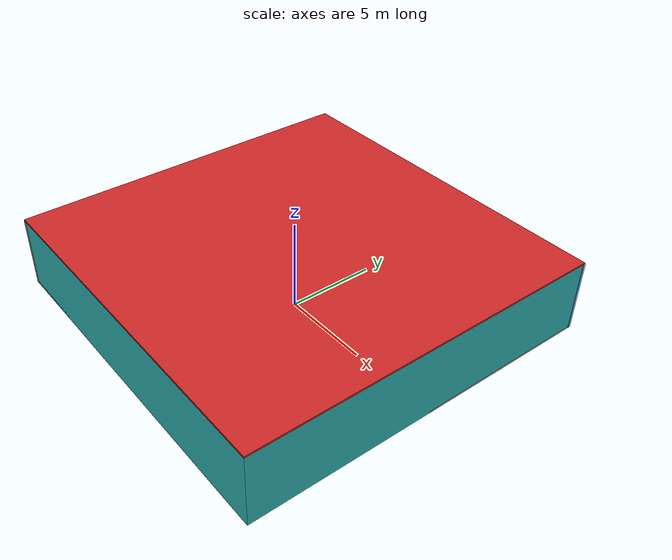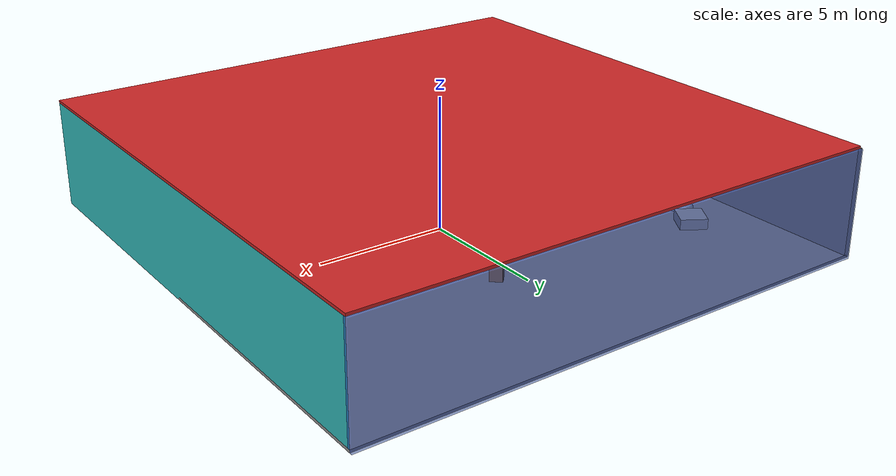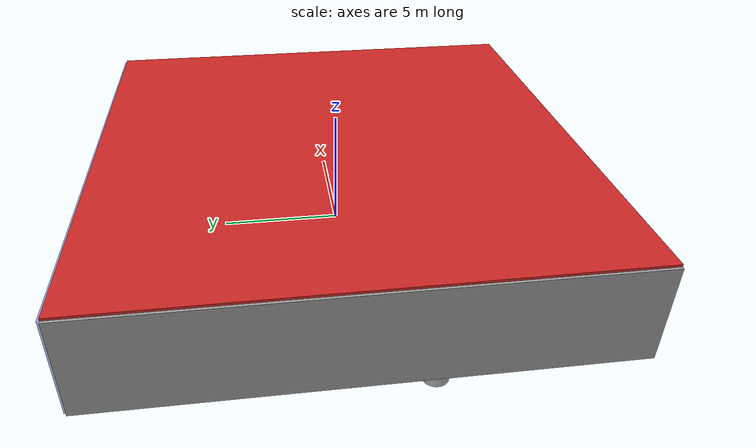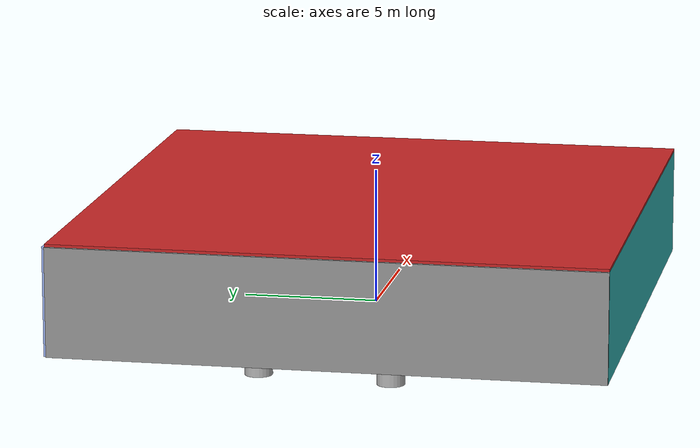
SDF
<sdf version="1.4">
 <world name="default">
  <physics type="ode">
   <max_step_size>0.001</max_step_size>
   <real_time_factor>1</real_time_factor>
   <real_time_update_rate>1000</real_time_update_rate>
   <gravity>0 0 -9.8</gravity>
  </physics>
  <scene><ambient>0.4 0.4 0.4 1</ambient><background>0.7 0.7 0.7 1</background><shadows>1</shadows></scene>
  <model name="Surrounding">
   <static>1</static>
   <link name="Ceiling">
    <collision name="Ceiling_Collision"><geometry><box><size>20 20 0.1</size></box></geometry></collision>
    <visual name="Ceiling_Visual">
     <geometry><box><size>20 20 0.1</size></box></geometry>
     <material>
      <script><uri>file://media/materials/scripts/gazebo.material</uri><name>Gazebo/RedGlow</name></script>
     </material>
    </visual>
    <pose>0 0 4.05 0 0 0</pose>
   </link>
   <link name="Wall_South">
    <collision name="Wall_South_Collision">
     <geometry><box><size>20 0 4</size></box></geometry>
     <pose>0 0 2 0 -0 0</pose>
    </collision>
    <visual name="Wall_South_Visual">
     <pose>0 0 2 0 -0 0</pose>
     <geometry><box><size>20 0 4</size></box></geometry>
     <material>
      <script>
       <uri>file://media/materials/scripts/gazebo.material</uri>
       <name>Gazebo/TurquoiseGlowOutline</name>
      </script>
     </material>
    </visual>
    <velocity_decay><linear>0</linear><angular>0</angular></velocity_decay>
    <pose>0 -10 0 0 -0 0</pose>
   </link>
   <link name="Wall_East">
    <collision name="Wall_21_Collision">
     <geometry><box><size>20 0 4</size></box></geometry>
     <pose>0 0 2 0 -0 0</pose>
    </collision>
    <visual name="Wall_21_Visual">
     <pose>0 0 2 0 -0 0</pose>
     <geometry><box><size>20 0 4</size></box></geometry>
     <material>
      <script>
       <uri>file://media/materials/scripts/gazebo.material</uri>
       <name>Gazebo/TurquoiseGlowOutline</name>
      </script>
     </material>
    </visual>
    <velocity_decay><linear>0</linear><angular>0</angular></velocity_decay>
    <pose>10 0 0 0 -0 1.5708</pose>
   </link>
   <link name="Wall_North">
    <collision name="Wall_22_Collision">
     <geometry><box><size>20 0.2 4</size></box></geometry>
     <pose>0 0 2 0 -0 0</pose>
    </collision>
    <visual name="Wall_22_Visual">
     <pose>0 0 2 0 -0 0</pose>
     <geometry><box><size>20 0.2 4</size></box></geometry>
     <material>
      <script><uri>file://media/materials/scripts/gazebo.material</uri><name>Gazebo/BlueTransparent</name></script>
     </material>
    </visual>
    <velocity_decay><linear>0</linear><angular>0</angular></velocity_decay>
    <pose>0 10 0 0 -0 0</pose>
   </link>
   <link name="Wall_West">
    <collision name="Wall_23_Collision">
     <geometry><box><size>20 0.2 4</size></box></geometry>
     <pose>0 0 2 0 -0 0</pose>
    </collision>
    <visual name="Wall_23_Visual">
     <pose>0 0 2 0 -0 0</pose>
     <geometry><box><size>20 0.2 4</size></box></geometry>
     <material>
      <script><uri>file://media/materials/scripts/gazebo.material</uri><name>Gazebo/Grey</name></script>
     </material>
    </visual>
    <velocity_decay><linear>0</linear><angular>0</angular></velocity_decay>
    <pose>-10 0 0 0 0 -1.5708</pose>
   </link>
   <link name="Ground_link">
    <collision name="collision">
     <pose>0 0 .05 0 -0 0</pose>
     <geometry><box><size>20 20 0.1</size></box></geometry>
    </collision>
    <visual name="visual">
     <pose>0 0 .05 0 -0 0</pose>
     <geometry><box><size>20 20 0.1</size></box></geometry>
     <material>
      <script><uri>file://media/materials/scripts/gazebo.material</uri><name>Gazebo/Grey</name></script>
     </material>
    </visual>
   </link>
   <static>1</static>
  </model>
  <spherical_coordinates>
   <surface_model>EARTH_WGS84</surface_model>
   <latitude_deg>0</latitude_deg>
   <longitude_deg>0</longitude_deg>
   <elevation>0</elevation>
   <heading_deg>0</heading_deg>
  </spherical_coordinates>
  <light name="lightball_0" type="diffuse">
   <diffuse>0.8 0.8 0.8 1</diffuse>
   <specular>0.2 0.2 0.2 1</specular>
   <attenuation>
    <range>100</range>
    <constant>0.7</constant>
    <linear>0.01</linear>
    <quadratic>0.001</quadratic>
   </attenuation>
   <direction>-0.5 0.1 -0.9</direction>
   <pose>3.95035077189 -5.27639107226 2.90731400715 0 0 0</pose>
  </light>
  <light name="lightball_1" type="diffuse">
   <diffuse>0.8 0.8 0.8 1</diffuse>
   <specular>0.2 0.2 0.2 1</specular>
   <attenuation>
    <range>100</range>
    <constant>0.7</constant>
    <linear>0.01</linear>
    <quadratic>0.001</quadratic>
   </attenuation>
   <direction>-0.5 0.1 -0.9</direction>
   <pose>-4.17408303884 8.32253132632 2.30363741865 0 0 0</pose>
  </light>
  <light name="lightball_2" type="diffuse">
   <diffuse>0.8 0.8 0.8 1</diffuse>
   <specular>0.2 0.2 0.2 1</specular>
   <attenuation>
    <range>100</range>
    <constant>0.7</constant>
    <linear>0.01</linear>
    <quadratic>0.001</quadratic>
   </attenuation>
   <direction>-0.5 0.1 -0.9</direction>
   <pose>3.95107689907 6.40162953017 1.22402886421 0 0 0</pose>
  </light>
  <light name="lightball_3" type="diffuse">
   <diffuse>0.8 0.8 0.8 1</diffuse>
   <specular>0.2 0.2 0.2 1</specular>
   <attenuation>
    <range>100</range>
    <constant>0.7</constant>
    <linear>0.01</linear>
    <quadratic>0.001</quadratic>
   </attenuation>
   <direction>-0.5 0.1 -0.9</direction>
   <pose>-1.07092102128 -3.05405911959 1.96860500645 0 0 0</pose>
  </light>
  <light name="lightball_4" type="diffuse">
   <diffuse>0.8 0.8 0.8 1</diffuse>
   <specular>0.2 0.2 0.2 1</specular>
   <attenuation>
    <range>100</range>
    <constant>0.7</constant>
    <linear>0.01</linear>
    <quadratic>0.001</quadratic>
   </attenuation>
   <direction>-0.5 0.1 -0.9</direction>
   <pose>-2.78271000216 -0.111486793783 3.78067347464 0 0 0</pose>
  </light>
  <light name="lightball_5" type="diffuse">
   <diffuse>0.8 0.8 0.8 1</diffuse>
   <specular>0.2 0.2 0.2 1</specular>
   <attenuation>
    <range>100</range>
    <constant>0.7</constant>
    <linear>0.01</linear>
    <quadratic>0.001</quadratic>
   </attenuation>
   <direction>-0.5 0.1 -0.9</direction>
   <pose>-4.25077676596 7.09701796768 1.415227295 0 0 0</pose>
  </light>
  <light name="lightball_6" type="diffuse">
   <diffuse>0.8 0.8 0.8 1</diffuse>
   <specular>0.2 0.2 0.2 1</specular>
   <attenuation>
    <range>100</range>
    <constant>0.7</constant>
    <linear>0.01</linear>
    <quadratic>0.001</quadratic>
   </attenuation>
   <direction>-0.5 0.1 -0.9</direction>
   <pose>7.38963425453 -1.59149434828 1.26354992984 0 0 0</pose>
  </light>
  <include>
   <uri>model://textured_shapes</uri>
   <pose>-8.00600754746 -2.11575445162 0 0 0 1.69015232777</pose>
  </include>
  <include>
   <uri>model://textured_shapes</uri>
   <pose>-8.27715391633 3.80065070712 0 0 0 2.59078240828</pose>
  </include>
  <include>
   <uri>model://robocup_3Dsim_goal</uri>
   <pose>-2.21539906912 1.22652458048 0 0 0 0.409270015293</pose>
  </include>
  <include><uri>model://table</uri><pose>2.13282122774 -2.16620266073 0 0 0 0.699560022013</pose></include>
  <include><uri>model://cabinet</uri><pose>0.902741884 4.45626798385 0 0 0 2.40056073087</pose></include>
 </world>
</sdf>

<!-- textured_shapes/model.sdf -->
<sdf version="1.6">
  <model name="textured_shapes">
    <pose>0 0 0.5 0 0 0</pose>
    <link name="box">
      <pose>0 -1.5 0 0 0 0</pose>
      <collision name="collision">
        <geometry>
          <box>
            <size>1 1 1</size>
          </box>
        </geometry>
      </collision>
      <visual name="visual">
        <geometry>
          <box>
            <size>1 1 1</size>
          </box>
        </geometry>
        <material>
          <script>
            <uri>model://../model_source/models/textured_shapes/materials/scripts</uri>
            <uri>model://../model_source/models/textured_shapes/materials/textures</uri>
            <name>TexturedShape/Squares</name>
          </script>
        </material>
      </visual>
    </link>
    <link name="sphere">
      <collision name="collision">
        <geometry>
          <sphere>
            <radius>0.5</radius>
          </sphere>
        </geometry>
      </collision>
      <visual name="visual">
        <geometry>
          <sphere>
            <radius>0.5</radius>
          </sphere>
        </geometry>
        <material>
          <script>
            <uri>model://../model_source/models/textured_shapes/materials/scripts</uri>
            <uri>model://../model_source/models/textured_shapes/materials/textures</uri>
            <name>TexturedShape/Squares</name>
          </script>
        </material>
      </visual>
    </link>
    <link name="cylinder">
      <pose>0 1.5 0 0 0 0</pose>
      <collision name="collision">
        <geometry>
          <cylinder>
            <radius>0.5</radius>
            <length>1</length>
          </cylinder>
        </geometry>
      </collision>
      <visual name="visual">
        <geometry>
          <cylinder>
            <radius>0.5</radius>
            <length>1</length>
          </cylinder>
        </geometry>
        <material>
          <script>
            <uri>model://../model_source/models/textured_shapes/materials/scripts</uri>
            <uri>model://../model_source/models/textured_shapes/materials/textures</uri>
            <name>TexturedShape/Squares</name>
          </script>
        </material>
      </visual>
    </link>
  </model>
</sdf>

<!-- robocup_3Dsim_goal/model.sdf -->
<sdf version="1.5">
  <model name="robocup_3d_goal">
    <static>true</static>
    <link name="left_post">
      <pose>0 1.05 0.45 0 0 0</pose>
      <collision name="collision">
        <geometry>
          <cylinder>
            <radius>0.05</radius>
            <length>0.9</length>
          </cylinder>
        </geometry>
      </collision>
      <visual name="visual">
        <geometry>
          <cylinder>
            <radius>0.05</radius>
            <length>0.9</length>
          </cylinder>
        </geometry>
        <material>
          <script>
            <uri>file://media/materials/scripts/gazebo.material</uri>
            <name>Gazebo/ZincYellow</name>
          </script>
        </material>
      </visual>
    </link>
    <link name="left_support_horiz_lower">
      <pose>0.30 1.05 0.01 0 0 0</pose>
      <collision name="collision">
        <geometry>
          <box>
            <size>0.50 0.02 0.02</size>
          </box>
        </geometry>
      </collision>
      <visual name="visual">
        <geometry>
          <box>
            <size>0.50 0.02 0.02</size>
          </box>
        </geometry>
        <material>
          <script>
            <uri>file://media/materials/scripts/gazebo.material</uri>
            <name>Gazebo/White</name>
          </script>
        </material>
      </visual>
    </link>
    <link name="left_support_horiz_upper">
      <pose>0.30 1.05 0.79 0 0 0</pose>
      <collision name="collision">
        <geometry>
          <box>
            <size>0.50 0.02 0.02</size>
          </box>
        </geometry>
      </collision>
      <visual name="visual">
        <geometry>
          <box>
            <size>0.50 0.02 0.02</size>
          </box>
        </geometry>
        <material>
          <script>
            <uri>file://media/materials/scripts/gazebo.material</uri>
            <name>Gazebo/White</name>
          </script>
        </material>
      </visual>
    </link>
    <link name="left_support_vertical">
      <pose>0.56 1.05 0.4 0 1.5708 0</pose>
      <collision name="collision">
        <geometry>
          <box>
            <size>0.80 0.02 0.02</size>
          </box>
        </geometry>
      </collision>
      <visual name="visual">
        <geometry>
          <box>
            <size>0.80 0.02 0.02</size>
          </box>
        </geometry>
        <material>
          <script>
            <uri>file://media/materials/scripts/gazebo.material</uri>
            <name>Gazebo/White</name>
          </script>
        </material>
      </visual>
    </link>
    <link name="right_support_horiz_lower">
      <pose>0.30 -1.05 0.01 0 0 0</pose>
      <collision name="collision">
        <geometry>
          <box>
            <size>0.50 0.02 0.02</size>
          </box>
        </geometry>
      </collision>
      <visual name="visual">
        <geometry>
          <box>
            <size>0.50 0.02 0.02</size>
          </box>
        </geometry>
        <material>
          <script>
            <uri>file://media/materials/scripts/gazebo.material</uri>
            <name>Gazebo/White</name>
          </script>
        </material>
      </visual>
    </link>
    <link name="right_support_horiz_upper">
      <pose>0.30 -1.05 0.79 0 0 0</pose>
      <collision name="collision">
        <geometry>
          <box>
            <size>0.50 0.02 0.02</size>
          </box>
        </geometry>
      </collision>
      <visual name="visual">
        <geometry>
          <box>
            <size>0.50 0.02 0.02</size>
          </box>
        </geometry>
        <material>
          <script>
            <uri>file://media/materials/scripts/gazebo.material</uri>
            <name>Gazebo/White</name>
          </script>
        </material>
      </visual>
    </link>
    <link name="right_support_vertical">
      <pose>0.56 -1.05 0.4 0 1.5708 0</pose>
      <collision name="collision">
        <geometry>
          <box>
            <size>0.80 0.02 0.02</size>
          </box>
        </geometry>
      </collision>
      <visual name="visual">
        <geometry>
          <box>
            <size>0.80 0.02 0.02</size>
          </box>
        </geometry>
        <material>
          <script>
            <uri>file://media/materials/scripts/gazebo.material</uri>
            <name>Gazebo/White</name>
          </script>
        </material>
      </visual>
    </link>
    <link name="center_support_horiz_lower">
      <pose>0.56 0 0.01 0 1.5708 0</pose>
      <collision name="collision">
        <geometry>
          <box>
            <size>0.02 2.08 0.02</size>
          </box>
        </geometry>
      </collision>
      <visual name="visual">
        <geometry>
          <box>
            <size>0.02 2.08 0.02</size>
          </box>
        </geometry>
        <material>
          <script>
            <uri>file://media/materials/scripts/gazebo.material</uri>
            <name>Gazebo/White</name>
          </script>
        </material>
      </visual>
    </link>
    <link name="center_support_horiz_upper">
      <pose>0.56 0 0.79 0 1.5708 0</pose>
      <collision name="collision">
        <geometry>
          <box>
            <size>0.02 2.08 0.02</size>
          </box>
        </geometry>
      </collision>
      <visual name="visual">
        <geometry>
          <box>
            <size>0.02 2.08 0.02</size>
          </box>
        </geometry>
        <material>
          <script>
            <uri>file://media/materials/scripts/gazebo.material</uri>
            <name>Gazebo/White</name>
          </script>
        </material>
      </visual>
    </link>
    <link name="right_post">
      <pose>0 -1.05 0.45 0 0 0</pose>
      <collision name="collision">
        <geometry>
          <cylinder>
            <radius>0.05</radius>
            <length>0.9</length>
          </cylinder>
        </geometry>
      </collision>
      <visual name="visual">
        <geometry>
          <cylinder>
            <radius>0.05</radius>
            <length>0.9</length>
          </cylinder>
        </geometry>
        <material>
          <script>
            <uri>file://media/materials/scripts/gazebo.material</uri>
            <name>Gazebo/ZincYellow</name>
          </script>
        </material>
      </visual>
    </link>
    <link name="crossbar">
      <pose>0 0 0.85 1.57 1.57 0</pose>
      <collision name="collision">
        <geometry>
          <cylinder>
            <radius>0.05</radius>
            <length>2.0</length>
          </cylinder>
        </geometry>
      </collision>
      <visual name="visual">
        <geometry>
          <cylinder>
            <radius>0.05</radius>
            <length>2.0</length>
          </cylinder>
        </geometry>
        <material>
          <script>
            <uri>file://media/materials/scripts/gazebo.material</uri>
            <name>Gazebo/ZincYellow</name>
          </script>
        </material>
      </visual>
    </link>
    <link name="center_net">
      <pose>0.56 0 0.40 0 0 0</pose>
      <collision name="collision">
        <geometry>
          <box>
            <size>0.01 2.1 0.80</size>
          </box>
        </geometry>
      </collision>
      <visual name="visual">
        <geometry>
          <box>
            <size>0.01 2.1 0.80</size>
          </box>
        </geometry>
        <material>
          <script>
            <uri>model://../model_source/models/robocup09_spl_field/materials/scripts/</uri>
            <uri>model://../model_source/models/robocup09_spl_field/materials/textures/</uri>
            <name>RoboCup/Net</name>
          </script>
        </material>
      </visual>
    </link>
    <link name="left_net">
      <pose>0.30 1.05 0.40 0 0 0</pose>
      <collision name="collision">
        <geometry>
          <box>
            <size>0.50 0.01 0.76</size>
          </box>
        </geometry>
      </collision>
      <visual name="visual">
        <geometry>
          <box>
            <size>0.50 0.01 0.76</size>
          </box>
        </geometry>
        <material>
          <script>
            <uri>model://../model_source/models/robocup09_spl_field/materials/scripts/</uri>
            <uri>model://../model_source/models/robocup09_spl_field/materials/textures/</uri>
            <name>RoboCup/Net</name>
          </script>
        </material>
      </visual>
    </link>
    <link name="right_net">
      <pose>0.30 -1.05 0.40 0 0 0</pose>
      <collision name="collision">
        <geometry>
          <box>
            <size>0.50 0.01 0.76</size>
          </box>
        </geometry>
      </collision>
      <visual name="visual">
        <geometry>
          <box>
            <size>0.50 0.01 0.76</size>
          </box>
        </geometry>
        <material>
          <script>
            <uri>model://../model_source/models/robocup09_spl_field/materials/scripts/</uri>
            <uri>model://../model_source/models/robocup09_spl_field/materials/textures/</uri>
            <name>RoboCup/Net</name>
          </script>
        </material>
      </visual>
    </link>
  </model>
</sdf>

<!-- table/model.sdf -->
<sdf version="1.5">
  <model name="table">
    <static>true</static>
    <link name="link">
      <collision name="surface">
        <pose>0 0 1.0 0 0 0</pose>
        <geometry>
          <box>
            <size>1.5 0.8 0.03</size>
          </box>
        </geometry>
        <surface>
          <friction>
            <ode>
              <mu>0.6</mu>
              <mu2>0.6</mu2>
            </ode>
          </friction>
        </surface>
      </collision>
      <visual name="visual1">
        <pose>0 0 1.0 0 0 0</pose>
        <geometry>
          <box>
            <size>1.5 0.8 0.03</size>
          </box>
        </geometry>
        <material>
          <script>
            <uri>model://media/materials/scripts/gazebo.material</uri>
            <name>Gazebo/Wood</name>
          </script>
        </material>
      </visual>
      <collision name="front_left_leg">
        <pose>0.68 0.38 0.5 0 0 0</pose>
        <geometry>
          <cylinder>
            <radius>0.02</radius>
            <length>1.0</length>
          </cylinder>
        </geometry>
      </collision>
      <visual name="front_left_leg">
        <pose>0.68 0.38 0.5 0 0 0</pose>
        <geometry>
          <cylinder>
            <radius>0.02</radius>
            <length>1.0</length>
          </cylinder>
        </geometry>
        <material>
          <script>
            <uri>model://media/materials/scripts/gazebo.material</uri>
            <name>Gazebo/Grey</name>
          </script>
        </material>
      </visual>
      <collision name="front_right_leg">
        <pose>0.68 -0.38 0.5 0 0 0</pose>
        <geometry>
          <cylinder>
            <radius>0.02</radius>
            <length>1.0</length>
          </cylinder>
        </geometry>
      </collision>
      <visual name="front_right_leg">
        <pose>0.68 -0.38 0.5 0 0 0</pose>
        <geometry>
          <cylinder>
            <radius>0.02</radius>
            <length>1.0</length>
          </cylinder>
        </geometry>
        <material>
          <script>
            <uri>model://media/materials/scripts/gazebo.material</uri>
            <name>Gazebo/Grey</name>
          </script>
        </material>
      </visual>
      <collision name="back_right_leg">
        <pose>-0.68 -0.38 0.5 0 0 0</pose>
        <geometry>
          <cylinder>
            <radius>0.02</radius>
            <length>1.0</length>
          </cylinder>
        </geometry>
      </collision>
      <visual name="back_right_leg">
        <pose>-0.68 -0.38 0.5 0 0 0</pose>
        <geometry>
          <cylinder>
            <radius>0.02</radius>
            <length>1.0</length>
          </cylinder>
        </geometry>
        <material>
          <script>
            <uri>model://media/materials/scripts/gazebo.material</uri>
            <name>Gazebo/Grey</name>
          </script>
        </material>
      </visual>
      <collision name="back_left_leg">
        <pose>-0.68 0.38 0.5 0 0 0</pose>
        <geometry>
          <cylinder>
            <radius>0.02</radius>
            <length>1.0</length>
          </cylinder>
        </geometry>
      </collision>
      <visual name="back_left_leg">
        <pose>-0.68 0.38 0.5 0 0 0</pose>
        <geometry>
          <cylinder>
            <radius>0.02</radius>
            <length>1.0</length>
          </cylinder>
        </geometry>
        <material>
          <script>
            <uri>model://media/materials/scripts/gazebo.material</uri>
            <name>Gazebo/Grey</name>
          </script>
        </material>
      </visual>
    </link>
  </model>
</sdf>

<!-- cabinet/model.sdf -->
<sdf version="1.5">
  <model name="cabinet">
    <static>true</static>
    <link name="cabinet_bottom_plate">
      <inertial>
        <pose>0 0 -1 0 0 0</pose>
        <inertia>
          <ixx>2.050000</ixx>
          <ixy>0</ixy>
          <ixz>0</ixz>
          <iyy>2.050000</iyy>
          <iyz>0</iyz>
          <izz>2.050000</izz>
        </inertia>
        <mass>25.000000</mass>
      </inertial>
      <collision name="cabinet_bottom_plate_geom">
        <pose>0 0 0.010000 0 0 0</pose>
        <geometry>
          <box>
            <size>0.450000 0.450000 0.020000</size>
          </box>
        </geometry>
      </collision>
      <visual name="cabinet_bottom_plate_geom_visual">
        <pose>0 0 0.010000 0 0 0</pose>
        <geometry>
          <box>
            <size>0.450000 0.450000 0.020000</size>
          </box>
        </geometry>
        <material>
          <script>
            <uri>model://media/materials/scripts/gazebo.material</uri>
            <name>Gazebo/Wood</name>
          </script>
        </material>
      </visual>
      <collision name="cabinet_bottom_plate_geom_cabinet_back_plate">
        <pose>0.235000 0 0.510000 0 0 0</pose>
        <geometry>
          <box>
            <size>0.020000 0.450000 1.020000</size>
          </box>
        </geometry>
      </collision>
      <visual name="cabinet_bottom_plate_geom_cabinet_back_plate_visual">
        <pose>0.235000 0 0.510000 0 0 0</pose>
        <geometry>
          <box>
            <size>0.020000 0.450000 1.020000</size>
          </box>
        </geometry>
        <material>
          <script>
            <uri>model://media/materials/scripts/gazebo.material</uri>
            <name>Gazebo/Wood</name>
          </script>
        </material>
      </visual>
      <collision name="cabinet_bottom_plate_geom_cabinet_left_plate">
        <pose>0 0.235000 0.510000 0 0 0</pose>
        <geometry>
          <box>
            <size>0.450000 0.020000 1.020000</size>
          </box>
        </geometry>
      </collision>
      <visual name="cabinet_bottom_plate_geom_cabinet_left_plate_visual">
        <pose>0 0.235000 0.510000 0 0 0</pose>
        <geometry>
          <box>
            <size>0.450000 0.020000 1.020000</size>
          </box>
        </geometry>
        <material>
          <script>
            <uri>model://media/materials/scripts/gazebo.material</uri>
            <name>Gazebo/Wood</name>
          </script>
        </material>
      </visual>
      <collision name="cabinet_bottom_plate_geom_cabinet_middle_plate">
        <pose>0 0 0.510000 0 0 0</pose>
        <geometry>
          <box>
            <size>0.450000 0.450000 0.020000</size>
          </box>
        </geometry>
      </collision>
      <visual name="cabinet_bottom_plate_geom_cabinet_middle_plate_visual">
        <pose>0 0 0.510000 0 0 0</pose>
        <geometry>
          <box>
            <size>0.450000 0.450000 0.020000</size>
          </box>
        </geometry>
        <material>
          <script>
            <uri>model://media/materials/scripts/gazebo.material</uri>
            <name>Gazebo/Wood</name>
          </script>
        </material>
      </visual>
      <collision name="cabinet_bottom_plate_geom_cabinet_right_plate">
        <pose>0 -0.235000 0.510000 0 0 0</pose>
        <geometry>
          <box>
            <size>0.450000 0.020000 1.020000</size>
          </box>
        </geometry>
      </collision>
      <visual name="cabinet_bottom_plate_geom_cabinet_right_plate_visual">
        <pose>0 -0.235000 0.510000 0 0 0</pose>
        <geometry>
          <box>
            <size>0.450000 0.020000 1.020000</size>
          </box>
        </geometry>
        <material>
          <script>
            <uri>model://media/materials/scripts/gazebo.material</uri>
            <name>Gazebo/Wood</name>
          </script>
        </material>
      </visual>
      <collision name="cabinet_bottom_plate_geom_cabinet_top_plate">
        <pose>0 0 1.010000 0 0 0</pose>
        <geometry>
          <box>
            <size>0.450000 0.450000 0.020000</size>
          </box>
        </geometry>
      </collision>
      <visual name="cabinet_bottom_plate_geom_cabinet_top_plate_visual">
        <pose>0 0 1.010000 0 0 0</pose>
        <geometry>
          <box>
            <size>0.450000 0.450000 0.020000</size>
          </box>
        </geometry>
        <material>
          <script>
            <uri>model://media/materials/scripts/gazebo.material</uri>
            <name>Gazebo/Wood</name>
          </script>
        </material>
      </visual>
    </link>
  </model>
</sdf>
